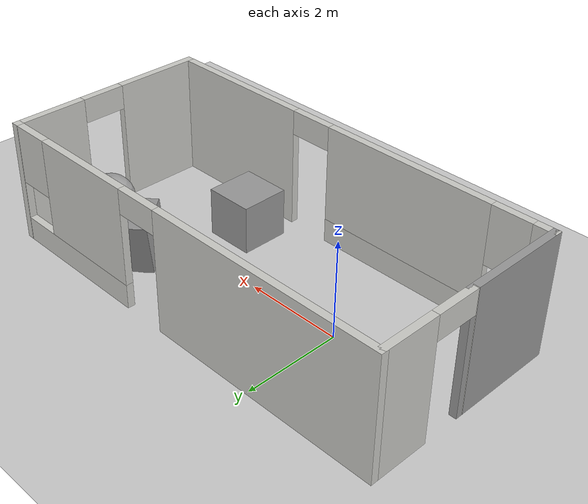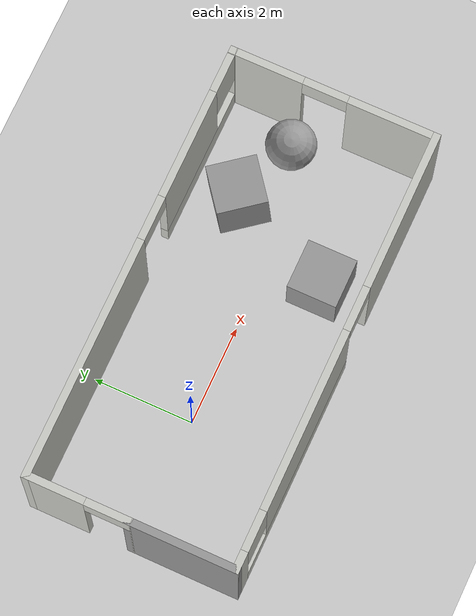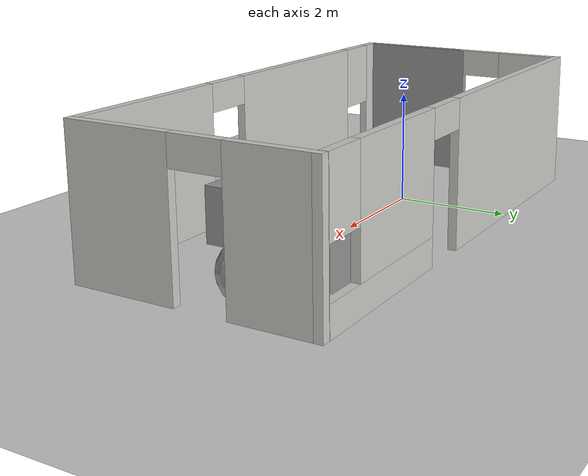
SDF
<sdf version="1.7">
 <world name="default">
  <light name="sun" type="directional">
   <pose>0 0 10 0 -0 0</pose>
   <diffuse>0.8 0.8 0.8 1</diffuse>
   <specular>0.2 0.2 0.2 1</specular>
   <attenuation>
    <range>1000</range>
    <constant>0.9</constant>
    <linear>0.01</linear>
    <quadratic>0.001</quadratic>
   </attenuation>
   <direction>-0.5 0.1 -0.9</direction>
   <spot><inner_angle>0</inner_angle><outer_angle>0</outer_angle><falloff>0</falloff></spot>
  </light>
  <model name="ground_plane">
   <static>1</static>
   <link name="link">
    <collision name="collision">
     <geometry><plane><normal>0 0 1</normal><size>100 100</size></plane></geometry>
     <surface>
      <contact><collide_bitmask>65535</collide_bitmask></contact>
      <friction><ode><mu>100</mu><mu2>50</mu2></ode></friction>
     </surface>
    </collision>
    <visual name="visual">
     <cast_shadows>0</cast_shadows>
     <geometry><plane><normal>0 0 1</normal><size>100 100</size></plane></geometry>
     <material>
      <script><uri>file://media/materials/scripts/gazebo.material</uri><name>Gazebo/Grey</name></script>
     </material>
    </visual>
   </link>
  </model>
  <gravity>0 0 -9.8</gravity>
  <magnetic_field>6e-06 2.3e-05 -4.2e-05</magnetic_field>
  <atmosphere type="adiabatic"/>
  <physics type="ode">
   <max_step_size>0.001</max_step_size>
   <real_time_factor>1</real_time_factor>
   <real_time_update_rate>1000</real_time_update_rate>
  </physics>
  <scene><ambient>0.4 0.4 0.4 1</ambient><background>0.7 0.7 0.7 1</background><shadows>1</shadows></scene>
  <audio><device>default</device></audio>
  <spherical_coordinates>
   <surface_model>EARTH_WGS84</surface_model>
   <latitude_deg>0</latitude_deg>
   <longitude_deg>0</longitude_deg>
   <elevation>0</elevation>
   <heading_deg>0</heading_deg>
  </spherical_coordinates>
  <model name="tes">
   <pose>1.80141 -0.056518 0 0 -0 0</pose>
   <link name="Wall_11">
    <collision name="Wall_11_Collision">
     <geometry><box><size>2.25 0.15 2.5</size></box></geometry>
     <pose>0 0 1.25 0 -0 0</pose>
    </collision>
    <visual name="Wall_11_Visual">
     <pose>0 0 1.25 0 -0 0</pose>
     <geometry><box><size>2.25 0.15 2.5</size></box></geometry>
     <material>
      <script><uri>file://media/materials/scripts/gazebo.material</uri><name>Gazebo/Grey</name></script>
      <ambient>1 1 1 1</ambient>
     </material>
     <meta><layer>0</layer></meta>
    </visual>
    <pose>-4.425 -1 0 0 -0 -1.5708</pose>
   </link>
   <link name="Wall_12">
    <pose>-0 -2.05 0 0 -0 0</pose>
    <visual name="Wall_12_Visual_0">
     <pose>-4.28195 0 1.25 0 -0 0</pose>
     <geometry><box><size>0.436102 0.15 2.5</size></box></geometry>
     <material>
      <script><uri>file://media/materials/scripts/gazebo.material</uri><name>Gazebo/CeilingTiled</name></script>
      <ambient>1 1 1 1</ambient>
     </material>
     <meta><layer>0</layer></meta>
    </visual>
    <collision name="Wall_12_Collision_0">
     <geometry><box><size>0.436102 0.15 2.5</size></box></geometry>
     <pose>-4.28195 0 1.25 0 -0 0</pose>
    </collision>
    <visual name="Wall_12_Visual_1">
     <pose>2.88571 0 1.25 0 -0 0</pose>
     <geometry><box><size>3.22857 0.15 2.5</size></box></geometry>
     <material>
      <script><uri>file://media/materials/scripts/gazebo.material</uri><name>Gazebo/CeilingTiled</name></script>
      <ambient>1 1 1 1</ambient>
     </material>
     <meta><layer>0</layer></meta>
    </visual>
    <collision name="Wall_12_Collision_1">
     <geometry><box><size>3.22857 0.15 2.5</size></box></geometry>
     <pose>2.88571 0 1.25 0 -0 0</pose>
    </collision>
    <visual name="Wall_12_Visual_2">
     <pose>-1.84623 0 0.25 0 -0 0</pose>
     <geometry><box><size>4.43533 0.15 0.5</size></box></geometry>
     <material>
      <script><uri>file://media/materials/scripts/gazebo.material</uri><name>Gazebo/CeilingTiled</name></script>
      <ambient>1 1 1 1</ambient>
     </material>
     <meta><layer>0</layer></meta>
    </visual>
    <collision name="Wall_12_Collision_2">
     <geometry><box><size>4.43533 0.15 0.5</size></box></geometry>
     <pose>-1.84623 0 0.25 0 -0 0</pose>
    </collision>
    <visual name="Wall_12_Visual_3">
     <pose>-1.44623 0 1.5 0 -0 0</pose>
     <geometry><box><size>3.63533 0.15 2</size></box></geometry>
     <material>
      <script><uri>file://media/materials/scripts/gazebo.material</uri><name>Gazebo/CeilingTiled</name></script>
      <ambient>1 1 1 1</ambient>
     </material>
     <meta><layer>0</layer></meta>
    </visual>
    <collision name="Wall_12_Collision_3">
     <geometry><box><size>3.63533 0.15 2</size></box></geometry>
     <pose>-1.44623 0 1.5 0 -0 0</pose>
    </collision>
    <visual name="Wall_12_Visual_4">
     <pose>-3.6639 0 1.9 0 -0 0</pose>
     <geometry><box><size>0.8 0.15 1.2</size></box></geometry>
     <material>
      <script><uri>file://media/materials/scripts/gazebo.material</uri><name>Gazebo/CeilingTiled</name></script>
      <ambient>1 1 1 1</ambient>
     </material>
     <meta><layer>0</layer></meta>
    </visual>
    <collision name="Wall_12_Collision_4">
     <geometry><box><size>0.8 0.15 1.2</size></box></geometry>
     <pose>-3.6639 0 1.9 0 -0 0</pose>
    </collision>
    <visual name="Wall_12_Visual_5">
     <pose>0.821429 0 2.25 0 -0 0</pose>
     <geometry><box><size>0.9 0.15 0.5</size></box></geometry>
     <material>
      <script><uri>file://media/materials/scripts/gazebo.material</uri><name>Gazebo/CeilingTiled</name></script>
      <ambient>1 1 1 1</ambient>
     </material>
     <meta><layer>0</layer></meta>
    </visual>
    <collision name="Wall_12_Collision_5">
     <geometry><box><size>0.9 0.15 0.5</size></box></geometry>
     <pose>0.821429 0 2.25 0 -0 0</pose>
    </collision>
   </link>
   <link name="Wall_13">
    <pose>4.425 0 0 0 -0 1.5708</pose>
    <visual name="Wall_13_Visual_0">
     <pose>-1.20665 0 1.25 0 -0 0</pose>
     <geometry><box><size>1.83669 0.15 2.5</size></box></geometry>
     <material>
      <script><uri>file://media/materials/scripts/gazebo.material</uri><name>Gazebo/CeilingTiled</name></script>
      <ambient>1 1 1 1</ambient>
     </material>
     <meta><layer>0</layer></meta>
    </visual>
    <collision name="Wall_13_Collision_0">
     <geometry><box><size>1.83669 0.15 2.5</size></box></geometry>
     <pose>-1.20665 0 1.25 0 -0 0</pose>
    </collision>
    <visual name="Wall_13_Visual_1">
     <pose>1.36835 0 1.25 0 -0 0</pose>
     <geometry><box><size>1.51331 0.15 2.5</size></box></geometry>
     <material>
      <script><uri>file://media/materials/scripts/gazebo.material</uri><name>Gazebo/CeilingTiled</name></script>
      <ambient>1 1 1 1</ambient>
     </material>
     <meta><layer>0</layer></meta>
    </visual>
    <collision name="Wall_13_Collision_1">
     <geometry><box><size>1.51331 0.15 2.5</size></box></geometry>
     <pose>1.36835 0 1.25 0 -0 0</pose>
    </collision>
    <visual name="Wall_13_Visual_2">
     <pose>0.161691 0 2.25 0 -0 0</pose>
     <geometry><box><size>0.9 0.15 0.5</size></box></geometry>
     <material>
      <script><uri>file://media/materials/scripts/gazebo.material</uri><name>Gazebo/CeilingTiled</name></script>
      <ambient>1 1 1 1</ambient>
     </material>
     <meta><layer>0</layer></meta>
    </visual>
    <collision name="Wall_13_Collision_2">
     <geometry><box><size>0.9 0.15 0.5</size></box></geometry>
     <pose>0.161691 0 2.25 0 -0 0</pose>
    </collision>
   </link>
   <link name="Wall_14">
    <pose>-0 2.05 0 0 -0 3.14159</pose>
    <visual name="Wall_14_Visual_0">
     <pose>-4.41952 0 1.25 0 -0 0</pose>
     <geometry><box><size>0.160968 0.15 2.5</size></box></geometry>
     <material>
      <script><uri>file://media/materials/scripts/gazebo.material</uri><name>Gazebo/CeilingTiled</name></script>
      <ambient>1 1 1 1</ambient>
     </material>
     <meta><layer>0</layer></meta>
    </visual>
    <collision name="Wall_14_Collision_0">
     <geometry><box><size>0.160968 0.15 2.5</size></box></geometry>
     <pose>-4.41952 0 1.25 0 -0 0</pose>
    </collision>
    <visual name="Wall_14_Visual_1">
     <pose>2.05423 0 1.25 0 -0 0</pose>
     <geometry><box><size>4.89154 0.15 2.5</size></box></geometry>
     <material>
      <script><uri>file://media/materials/scripts/gazebo.material</uri><name>Gazebo/CeilingTiled</name></script>
      <ambient>1 1 1 1</ambient>
     </material>
     <meta><layer>0</layer></meta>
    </visual>
    <collision name="Wall_14_Collision_1">
     <geometry><box><size>4.89154 0.15 2.5</size></box></geometry>
     <pose>2.05423 0 1.25 0 -0 0</pose>
    </collision>
    <visual name="Wall_14_Visual_2">
     <pose>-2.81529 0 0.25 0 -0 0</pose>
     <geometry><box><size>3.04749 0.15 0.5</size></box></geometry>
     <material>
      <script><uri>file://media/materials/scripts/gazebo.material</uri><name>Gazebo/CeilingTiled</name></script>
      <ambient>1 1 1 1</ambient>
     </material>
     <meta><layer>0</layer></meta>
    </visual>
    <collision name="Wall_14_Collision_2">
     <geometry><box><size>3.04749 0.15 0.5</size></box></geometry>
     <pose>-2.81529 0 0.25 0 -0 0</pose>
    </collision>
    <visual name="Wall_14_Visual_3">
     <pose>-2.41529 0 1.5 0 -0 0</pose>
     <geometry><box><size>2.24749 0.15 2</size></box></geometry>
     <material>
      <script><uri>file://media/materials/scripts/gazebo.material</uri><name>Gazebo/CeilingTiled</name></script>
      <ambient>1 1 1 1</ambient>
     </material>
     <meta><layer>0</layer></meta>
    </visual>
    <collision name="Wall_14_Collision_3">
     <geometry><box><size>2.24749 0.15 2</size></box></geometry>
     <pose>-2.41529 0 1.5 0 -0 0</pose>
    </collision>
    <visual name="Wall_14_Visual_4">
     <pose>-3.93903 0 1.9 0 -0 0</pose>
     <geometry><box><size>0.8 0.15 1.2</size></box></geometry>
     <material>
      <script><uri>file://media/materials/scripts/gazebo.material</uri><name>Gazebo/CeilingTiled</name></script>
      <ambient>1 1 1 1</ambient>
     </material>
     <meta><layer>0</layer></meta>
    </visual>
    <collision name="Wall_14_Collision_4">
     <geometry><box><size>0.8 0.15 1.2</size></box></geometry>
     <pose>-3.93903 0 1.9 0 -0 0</pose>
    </collision>
    <visual name="Wall_14_Visual_5">
     <pose>-0.841542 0 2.25 0 -0 0</pose>
     <geometry><box><size>0.9 0.15 0.5</size></box></geometry>
     <material>
      <script><uri>file://media/materials/scripts/gazebo.material</uri><name>Gazebo/CeilingTiled</name></script>
      <ambient>1 1 1 1</ambient>
     </material>
     <meta><layer>0</layer></meta>
    </visual>
    <collision name="Wall_14_Collision_5">
     <geometry><box><size>0.9 0.15 0.5</size></box></geometry>
     <pose>-0.841542 0 2.25 0 -0 0</pose>
    </collision>
   </link>
   <link name="Wall_15">
    <pose>-4.425 1.05 0 0 -0 -1.5708</pose>
    <visual name="Wall_15_Visual_0">
     <pose>-0.459141 0 1.25 0 -0 0</pose>
     <geometry><box><size>1.23172 0.15 2.5</size></box></geometry>
     <material>
      <script><uri>file://media/materials/scripts/gazebo.material</uri><name>Gazebo/CeilingTiled</name></script>
      <ambient>1 1 1 1</ambient>
     </material>
     <meta><layer>0</layer></meta>
    </visual>
    <collision name="Wall_15_Collision_0">
     <geometry><box><size>1.23172 0.15 2.5</size></box></geometry>
     <pose>-0.459141 0 1.25 0 -0 0</pose>
    </collision>
    <visual name="Wall_15_Visual_1">
     <pose>1.06586 0 1.25 0 -0 0</pose>
     <geometry><box><size>0.018281 0.15 2.5</size></box></geometry>
     <material>
      <script><uri>file://media/materials/scripts/gazebo.material</uri><name>Gazebo/CeilingTiled</name></script>
      <ambient>1 1 1 1</ambient>
     </material>
     <meta><layer>0</layer></meta>
    </visual>
    <collision name="Wall_15_Collision_1">
     <geometry><box><size>0.018281 0.15 2.5</size></box></geometry>
     <pose>1.06586 0 1.25 0 -0 0</pose>
    </collision>
    <visual name="Wall_15_Visual_2">
     <pose>0.606719 0 2.25 0 -0 0</pose>
     <geometry><box><size>0.9 0.15 0.5</size></box></geometry>
     <material>
      <script><uri>file://media/materials/scripts/gazebo.material</uri><name>Gazebo/CeilingTiled</name></script>
      <ambient>1 1 1 1</ambient>
     </material>
     <meta><layer>0</layer></meta>
    </visual>
    <collision name="Wall_15_Collision_2">
     <geometry><box><size>0.9 0.15 0.5</size></box></geometry>
     <pose>0.606719 0 2.25 0 -0 0</pose>
    </collision>
   </link>
   <static>1</static>
  </model>
  <model name="unit_box">
   <pose>4.32606 1.01371 0.489865 -0.078239 -0.051612 -0.915041</pose>
   <link name="link">
    <inertial>
     <mass>1</mass>
     <inertia>
      <ixx>0.166667</ixx>
      <ixy>0</ixy>
      <ixz>0</ixz>
      <iyy>0.166667</iyy>
      <iyz>0</iyz>
      <izz>0.166667</izz>
     </inertia>
    </inertial>
    <collision name="collision"><geometry><box><size>1 1 1</size></box></geometry></collision>
    <visual name="visual">
     <geometry><box><size>1 1 1</size></box></geometry>
     <material>
      <script><name>Gazebo/Grey</name><uri>file://media/materials/scripts/gazebo.material</uri></script>
     </material>
    </visual>
   </link>
  </model>
  <model name="unit_box_0">
   <pose>3.39664 -1.127 0.5 0 -0 0</pose>
   <link name="link">
    <inertial>
     <mass>1</mass>
     <inertia>
      <ixx>0.166667</ixx>
      <ixy>0</ixy>
      <ixz>0</ixz>
      <iyy>0.166667</iyy>
      <iyz>0</iyz>
      <izz>0.166667</izz>
     </inertia>
    </inertial>
    <collision name="collision"><geometry><box><size>1 1 1</size></box></geometry></collision>
    <visual name="visual">
     <geometry><box><size>1 1 1</size></box></geometry>
     <material>
      <script><name>Gazebo/Grey</name><uri>file://media/materials/scripts/gazebo.material</uri></script>
     </material>
    </visual>
   </link>
  </model>
  <model name="unit_sphere">
   <pose>5.6439 0.50646 0.5 0.069879 -0.117974 -0.016639</pose>
   <link name="link">
    <inertial>
     <mass>1</mass>
     <inertia><ixx>0.1</ixx><ixy>0</ixy><ixz>0</ixz><iyy>0.1</iyy><iyz>0</iyz><izz>0.1</izz></inertia>
    </inertial>
    <collision name="collision"><geometry><sphere><radius>0.5</radius></sphere></geometry></collision>
    <visual name="visual">
     <geometry><sphere><radius>0.5</radius></sphere></geometry>
     <material>
      <script><name>Gazebo/Grey</name><uri>file://media/materials/scripts/gazebo.material</uri></script>
     </material>
    </visual>
   </link>
  </model>
 </world>
</sdf>
